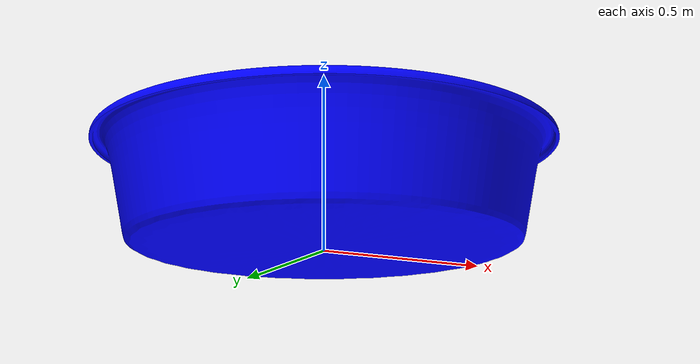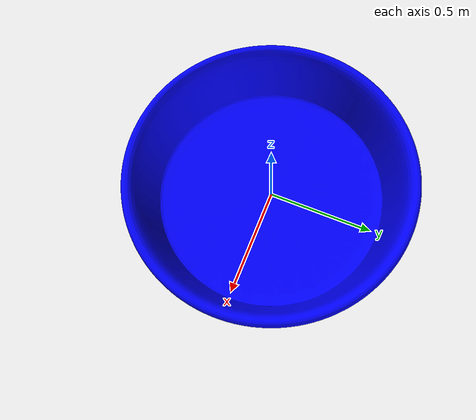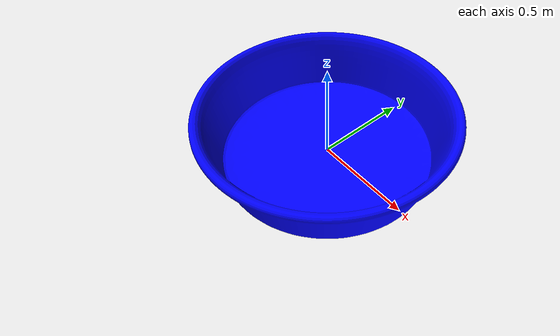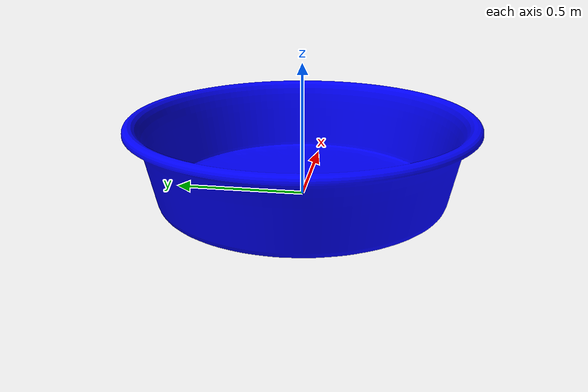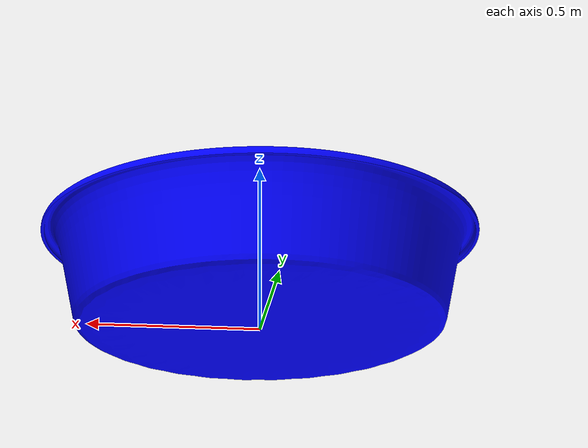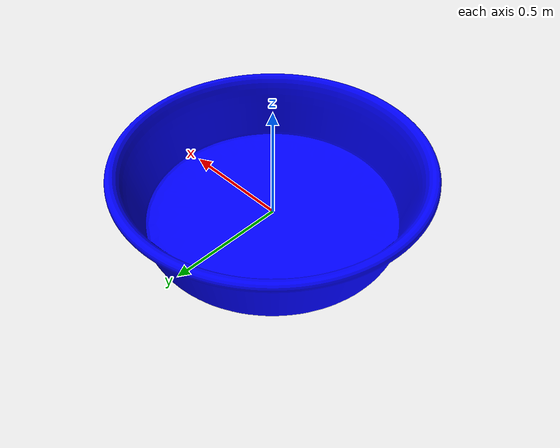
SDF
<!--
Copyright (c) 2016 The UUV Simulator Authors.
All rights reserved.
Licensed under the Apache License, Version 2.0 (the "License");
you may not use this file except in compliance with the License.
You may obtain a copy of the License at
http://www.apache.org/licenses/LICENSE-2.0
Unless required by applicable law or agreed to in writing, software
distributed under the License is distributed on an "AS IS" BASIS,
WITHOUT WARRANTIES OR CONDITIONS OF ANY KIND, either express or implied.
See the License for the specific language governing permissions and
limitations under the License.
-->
<?xml version="1.0" ?>
<sdf version="1.5">
  <model name="blue_bucket">
    <static>true</static>
    <link name="link">
      <collision name="gate_geom">
        <pose>0 0 0 0 0 0</pose>
        <geometry>
          <mesh>
            <uri>model://blue_bucket/meshes/blue_bucket.dae</uri>
          </mesh>
        </geometry>
      </collision>
      <visual name="gate">
        <cast_shadows>true</cast_shadows>
        <pose>0 0 0 0 0 0</pose>
        <geometry>
          <mesh>
            <uri>model://blue_bucket/meshes/blue_bucket.dae</uri>
          </mesh>
        </geometry>
        <material>
          <ambient>0 0 1 1</ambient>
          <diffuse>0 0 1 1</diffuse>
          <specular>0 0 1 1</specular>
        </material>
      </visual>
    </link>
  </model>
</sdf>
